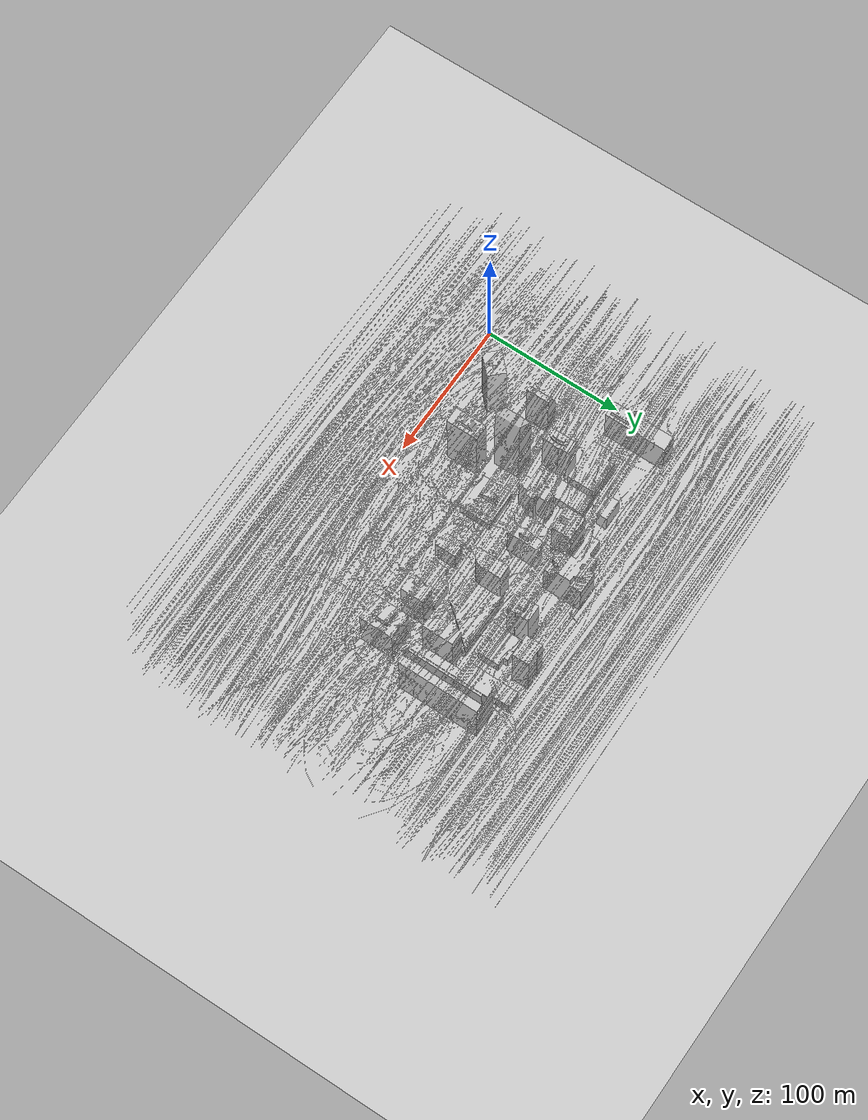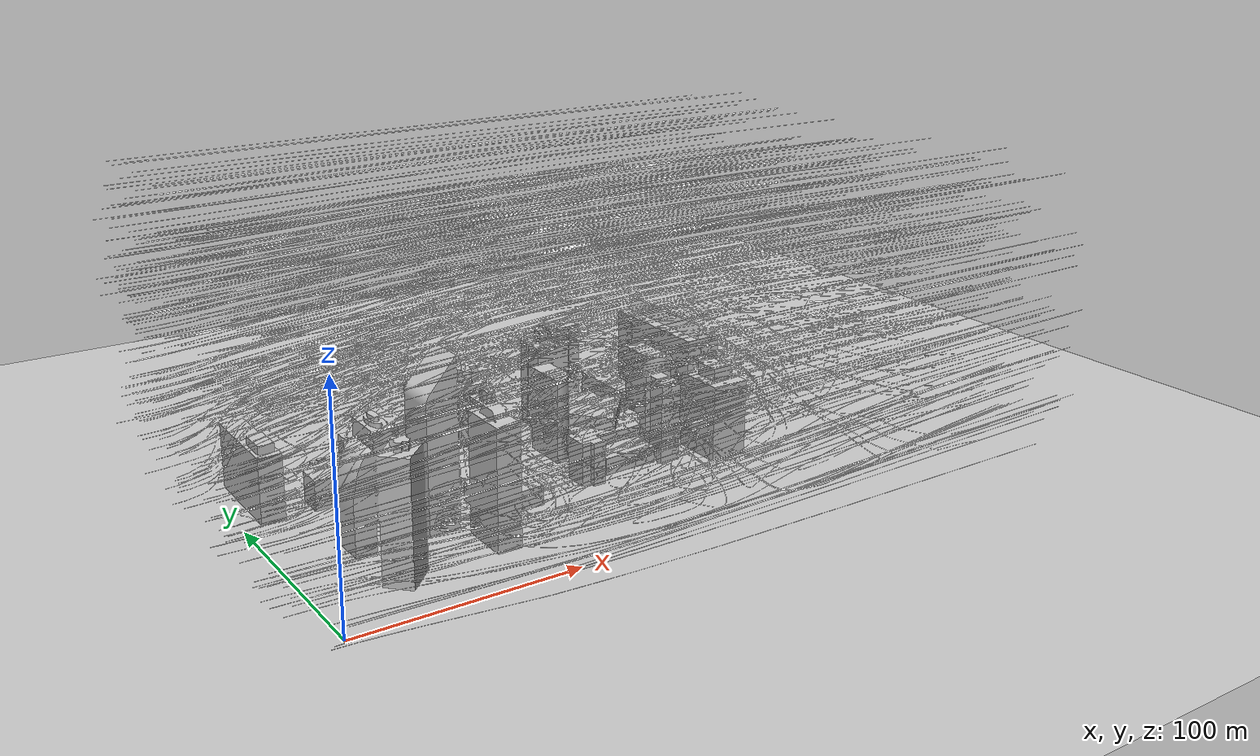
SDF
<?xml version="1.0" ?>
<sdf version="1.7">
  <world name="map">
    <physics name="1ms" type="ignore">
      <max_step_size>0.001</max_step_size>
      <real_time_factor>1.0</real_time_factor>
    </physics>

    <plugin name="gz::sim::systems::Physics"
      filename="gz-sim-physics-system">
    </plugin>
    <plugin name="gz::sim::systems::Sensors"
      filename="gz-sim-sensors-system">
      <render_engine>ogre2</render_engine>
    </plugin>
    <plugin name="gz::sim::systems::UserCommands"
      filename="gz-sim-user-commands-system">
    </plugin>
    <plugin name="gz::sim::systems::SceneBroadcaster"
      filename="gz-sim-scene-broadcaster-system">
    </plugin>
    <plugin name="gz::sim::systems::AirPressure"
      filename="gz-sim-air-pressure-system">
    </plugin>
    <plugin name="gz::sim::systems::Altimeter"
      filename="gz-sim-altimeter-system">
    </plugin>
    <plugin name="gz::sim::systems::Imu"
      filename="gz-sim-imu-system">
    </plugin>
    <plugin name="gz::sim::systems::Magnetometer"
      filename="gz-sim-magnetometer-system">
    </plugin>
    <plugin name="gz::sim::systems::NavSat"
      filename="gz-sim-navsat-system">
    </plugin>

    <scene>
      <ambient>1.0 1.0 1.0</ambient>
      <background>0.8 0.8 0.8</background>
      <sky></sky>
    </scene>

    <light type="directional" name="sun">
      <cast_shadows>true</cast_shadows>
      <pose>0 0 10 0 0 0</pose>
      <diffuse>0.8 0.8 0.8 1</diffuse>
      <specular>0.8 0.8 0.8 1</specular>
      <attenuation>
        <range>1000</range>
        <constant>0.9</constant>
        <linear>0.01</linear>
        <quadratic>0.001</quadratic>
      </attenuation>
      <direction>-0.5 0.1 -0.9</direction>
    </light>

    <spherical_coordinates>
      <latitude_deg>-35.3632621</latitude_deg>
      <longitude_deg>149.1652374</longitude_deg>
      <elevation>10.0</elevation>
      <heading_deg>0</heading_deg>
      <surface_model>EARTH_WGS84</surface_model>
    </spherical_coordinates>

    <model name="ground_plane">
      <static>true</static>
      <link name="link">
        <collision name="collision">
          <geometry>
            <plane>
              <normal>0 0 1</normal>
              <size>1000 1000</size>
            </plane>
          </geometry>
        </collision>
        <visual name="visual">
          <geometry>
            <plane>
              <normal>0 0 1</normal>
              <size>1000 1000</size>
            </plane>
          </geometry>
          <material>
            <ambient>0.8 0.8 0.8 1</ambient>
            <diffuse>0.8 0.8 0.8 1</diffuse>
            <specular>0.8 0.8 0.8 1</specular>
          </material>
        </visual>
      </link>
    </model>

    <model name="buildings">
      <static>1</static>
      <link name="terrain">
        <collision name="collision">
          <geometry>
            <mesh>
              <uri>buildings/buildings_v1.dae</uri>
            </mesh>
          </geometry>
        </collision>
        <visual name="visual">
          <geometry>
            <mesh>
              <uri>buildings/buildings_v1.dae</uri>
            </mesh>
          </geometry>
        </visual>
        <visual name="visual_streamlines">
          <cast_shadows>0</cast_shadows>
          <geometry>
            <mesh>
              <uri>buildings/buildings_streamlines.dae</uri>
            </mesh>
          </geometry>
          <material>
            <ambient>1 1 1 1</ambient>
            <diffuse>1 1 1 1</diffuse>
            <specular>1 1 1 1</specular>
            <pbr>
              <metal>
                  <albedo_map>buildings/Image_0.png</albedo_map>
                  <metalness>0.1</metalness>
              </metal>
            </pbr>
          </material>
        </visual>
      </link>
    </model>

  </world>
</sdf>
